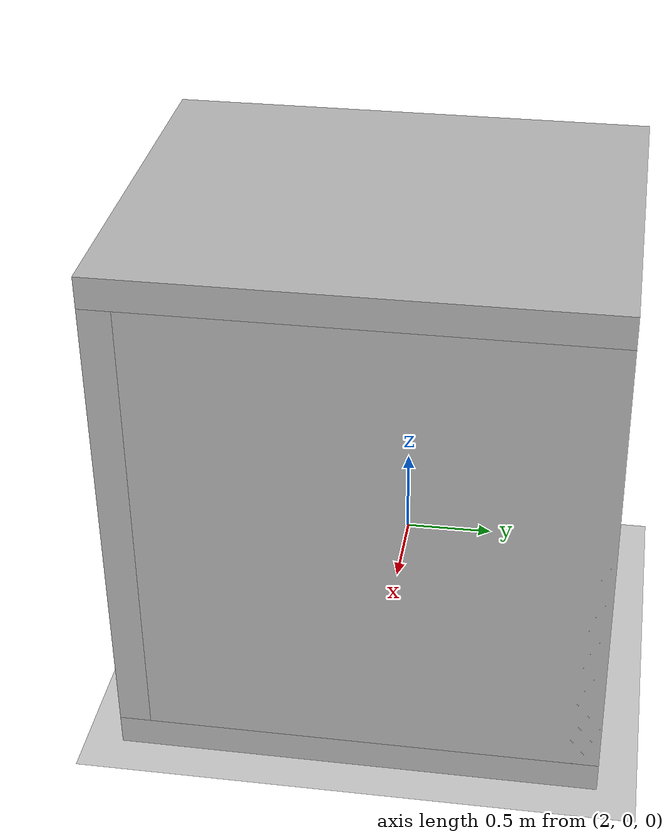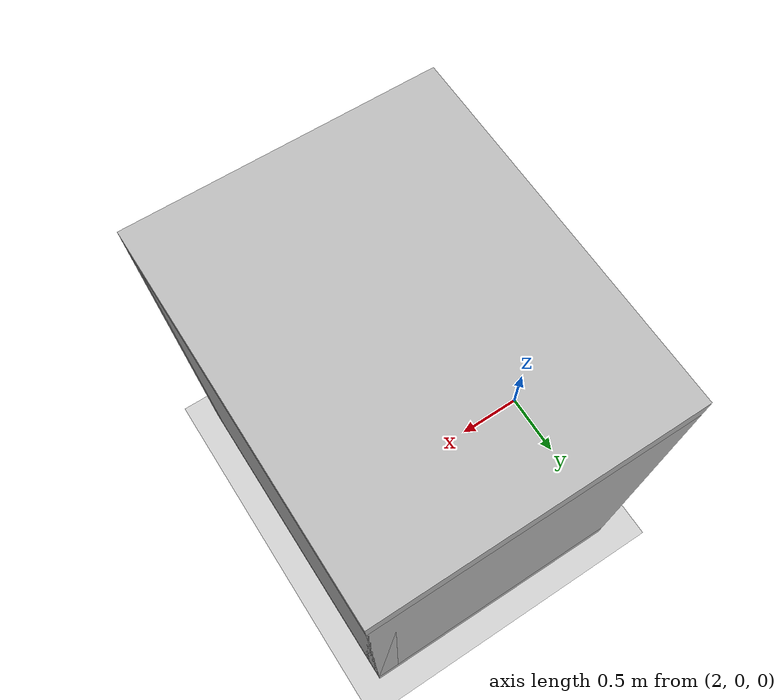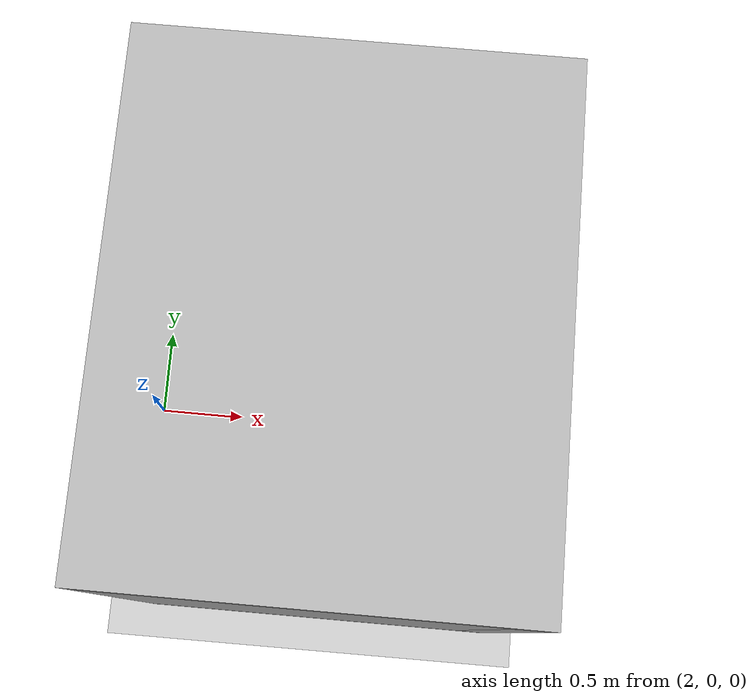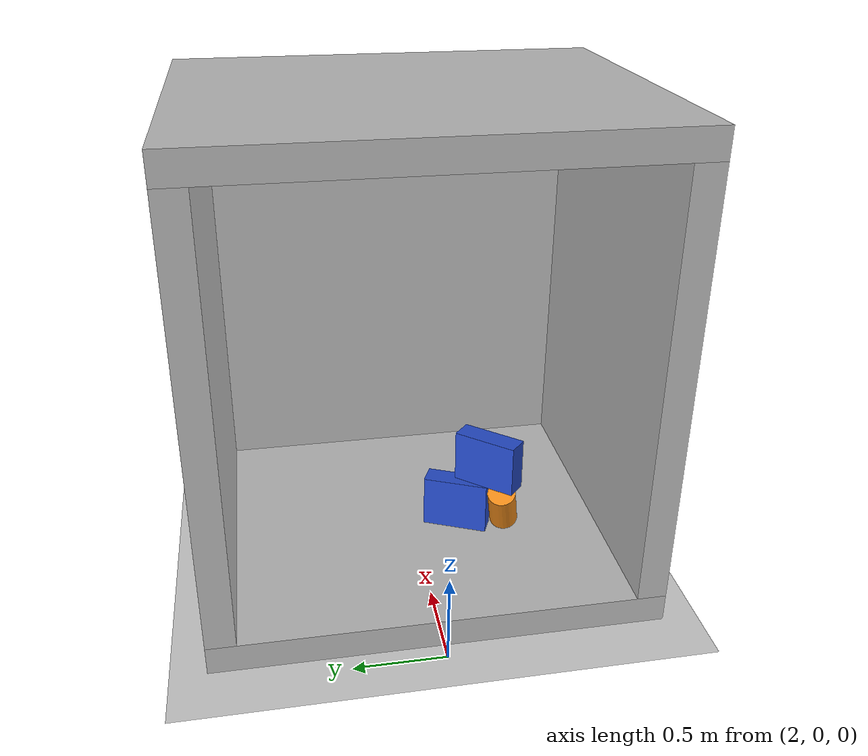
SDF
<sdf version="1.6">
 <world name="default">
  <light name="sun" type="directional">
   <pose>0 0 10 0 -0 0</pose>
   <diffuse>0.8 0.8 0.8 1</diffuse>
   <specular>0.1 0.1 0.1 1</specular>
   <attenuation>
    <range>1000</range>
    <constant>0.9</constant>
    <linear>0.01</linear>
    <quadratic>0.001</quadratic>
   </attenuation>
   <direction>-0.5 0.5 -1</direction>
  </light>
  <model name="ground_plane">
   <static>1</static>
   <link name="link">
    <collision name="collision">
     <geometry><plane><normal>0 0 1</normal><size>100 100</size></plane></geometry>
     <surface><friction><ode><mu>100</mu><mu2>50</mu2></ode></friction></surface>
    </collision>
    <visual name="visual">
     <cast_shadows>0</cast_shadows>
     <geometry><plane><normal>0 0 1</normal><size>100 100</size></plane></geometry>
     <material>
      <script><uri>file://media/materials/scripts/gazebo.material</uri><name>Gazebo/Grey</name></script>
     </material>
    </visual>
   </link>
  </model>
  <physics name="default_physics" default="0" type="ode">
   <real_time_update_rate>0</real_time_update_rate>
   <max_step_size>0.001</max_step_size>
   <real_time_factor>1</real_time_factor>
  </physics>
  <gravity>0 0 -9.8</gravity>
  <magnetic_field>6e-06 2.3e-05 -4.2e-05</magnetic_field>
  <atmosphere type="adiabatic"/>
  <scene><ambient>0.4 0.4 0.4 1</ambient><background>0.7 0.7 0.7 1</background><shadows>1</shadows></scene>
  <spherical_coordinates>
   <surface_model>EARTH_WGS84</surface_model>
   <latitude_deg>0</latitude_deg>
   <longitude_deg>0</longitude_deg>
   <elevation>0</elevation>
   <heading_deg>0</heading_deg>
  </spherical_coordinates>
  <model name="container">
   <link name="container">
    <inertial>
     <pose>0.22439 0 1.64098 0 -0 0</pose>
     <mass>205</mass>
     <inertia>
      <ixx>329.883</ixx>
      <ixy>1.59439e-15</ixy>
      <ixz>12.9249</ixz>
      <iyy>229.817</iyy>
      <iyz>1.16598e-14</iyz>
      <izz>267.609</izz>
     </inertia>
    </inertial>
    <collision name="container_back_collision">
     <pose>0.92 0 1.36 0 -0 0</pose>
     <geometry><box><size>0.16 2.45 2.4</size></box></geometry>
    </collision>
    <collision name="container_bottom_collision_1">
     <pose>0 0 0.08 0 -0 0</pose>
     <geometry><box><size>2 2.45 0.16</size></box></geometry>
    </collision>
    <collision name="container_left_collision_2">
     <pose>0 1.145 1.36 0 -0 0</pose>
     <geometry><box><size>2 0.16 2.4</size></box></geometry>
    </collision>
    <collision name="container_right_collision_3">
     <pose>0 -1.145 1.36 0 -0 0</pose>
     <geometry><box><size>2 0.16 2.4</size></box></geometry>
    </collision>
    <collision name="container_top_collision_4">
     <pose>0 0 2.64 0 -0 0</pose>
     <geometry><box><size>2 2.45 0.16</size></box></geometry>
    </collision>
    <visual name="container_back_visual">
     <pose>0.92 0 1.36 0 -0 0</pose>
     <geometry><box><size>0.16 2.45 2.4</size></box></geometry>
    </visual>
    <visual name="container_bottom_visual_1">
     <pose>0 0 0.08 0 -0 0</pose>
     <geometry><box><size>2 2.45 0.16</size></box></geometry>
    </visual>
    <visual name="container_left_visual_2">
     <pose>0 1.145 1.36 0 -0 0</pose>
     <geometry><box><size>2 0.16 2.4</size></box></geometry>
    </visual>
    <visual name="container_right_visual_3">
     <pose>0 -1.145 1.36 0 -0 0</pose>
     <geometry><box><size>2 0.16 2.4</size></box></geometry>
    </visual>
    <visual name="container_top_visual_4">
     <pose>0 0 2.64 0 -0 0</pose>
     <geometry><box><size>2 2.45 0.16</size></box></geometry>
    </visual>
   </link>
   <pose>3.08982 0.008881 -0 0 0 -0.002515</pose>
  </model>
  <model name="roblog-dhl-box-blue-simple-0-2448">
   <link name="link">
    <inertial>
     <mass>0.25</mass>
     <inertia>
      <ixx>0.00218083</ixx>
      <ixy>0</ixy>
      <ixz>0</ixz>
      <iyy>0.00473308</iyy>
      <iyz>0</iyz>
      <izz>0.00321375</izz>
     </inertia>
    </inertial>
    <collision name="link_collision"><geometry><box><size>0.372 0.126 0.298</size></box></geometry></collision>
    <visual name="link_visual">
     <geometry><box><size>0.372 0.126 0.298</size></box></geometry>
     <material>
      <script><name>Gazebo/Blue</name><uri>file://media/materials/scripts/gazebo.material</uri></script>
     </material>
    </visual>
   </link>
   <pose>2.92296 -0.234105 0.314332 -0.051732 -0.012458 -2.00437</pose>
  </model>
  <model name="roblog-dhl-box-blue-simple-1-2449">
   <link name="link">
    <inertial>
     <mass>0.25</mass>
     <inertia>
      <ixx>0.00218083</ixx>
      <ixy>0</ixy>
      <ixz>0</ixz>
      <iyy>0.00473308</iyy>
      <iyz>0</iyz>
      <izz>0.00321375</izz>
     </inertia>
    </inertial>
    <collision name="link_collision"><geometry><box><size>0.372 0.126 0.298</size></box></geometry></collision>
    <visual name="link_visual">
     <geometry><box><size>0.372 0.126 0.298</size></box></geometry>
     <material>
      <script><name>Gazebo/Blue</name><uri>file://media/materials/scripts/gazebo.material</uri></script>
     </material>
    </visual>
   </link>
   <pose>2.86942 -0.404512 0.614609 -0.034421 -0.022068 -2.30194</pose>
  </model>
  <model name="roblog-vanish-detergent-simple-2-2450">
   <link name="link">
    <inertial>
     <mass>0.08</mass>
     <inertia>
      <ixx>0.000324987</ixx>
      <ixy>0</ixy>
      <ixz>0</ixz>
      <iyy>0.000324987</iyy>
      <iyz>0</iyz>
      <izz>0.00011664</izz>
     </inertia>
    </inertial>
    <collision name="link_collision">
     <geometry><cylinder><length>0.2</length><radius>0.054</radius></cylinder></geometry>
    </collision>
    <visual name="link_visual">
     <geometry><cylinder><length>0.2</length><radius>0.054</radius></cylinder></geometry>
     <material>
      <script><name>Gazebo/PurpleGlow</name><uri>file://media/materials/scripts/gazebo.material</uri></script>
     </material>
    </visual>
    <velocity_decay><linear>0.005</linear><angular>0.005</angular></velocity_decay>
   </link>
   <pose>3.0233 -0.308468 0.270187 -0.219537 -0.115626 -0.835102</pose>
  </model>
  <model name="roblog-maisels-barrel-simple-3-2451">
   <link name="link">
    <inertial>
     <mass>0.54</mass>
     <inertia>
      <ixx>0.00354312</ixx>
      <ixy>0</ixy>
      <ixz>0</ixz>
      <iyy>0.00354312</iyy>
      <iyz>0</iyz>
      <izz>0.00181548</izz>
     </inertia>
    </inertial>
    <collision name="link_collision">
     <geometry><cylinder><length>0.242</length><radius>0.082</radius></cylinder></geometry>
    </collision>
    <visual name="link_visual">
     <geometry><cylinder><length>0.242</length><radius>0.082</radius></cylinder></geometry>
     <material>
      <script><name>Gazebo/Orange</name><uri>file://media/materials/scripts/gazebo.material</uri></script>
     </material>
    </visual>
    <velocity_decay><linear>0.005</linear><angular>0.005</angular></velocity_decay>
   </link>
   <pose>2.84001 -0.491721 0.302326 -0.089057 -0.355672 -0.225686</pose>
  </model>
 </world>
</sdf>
